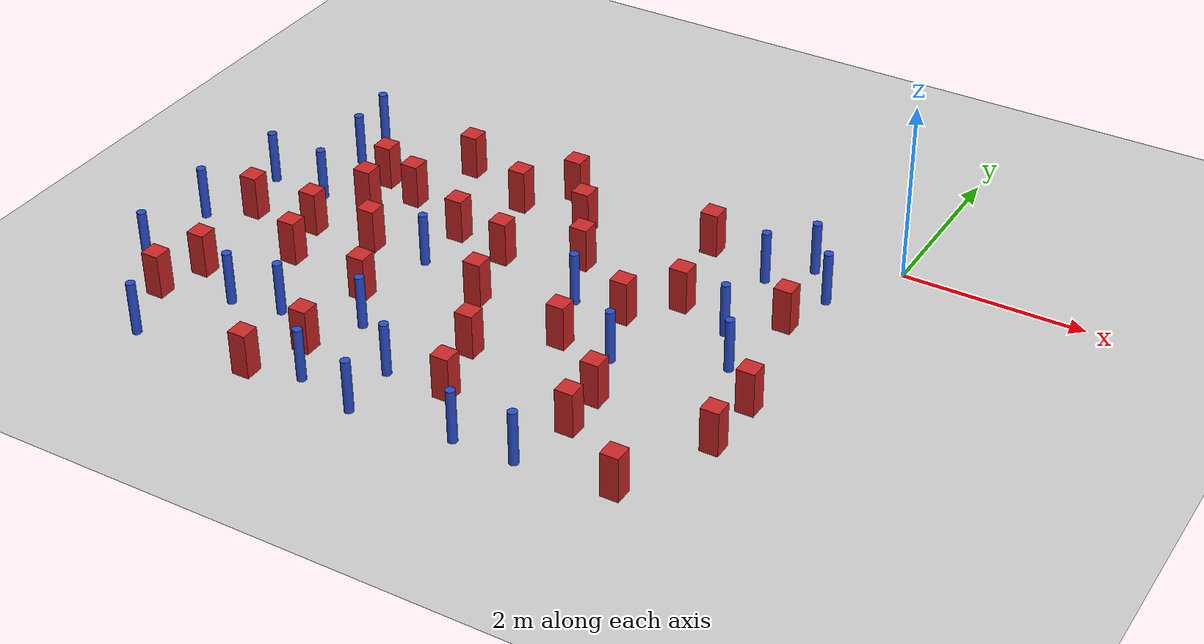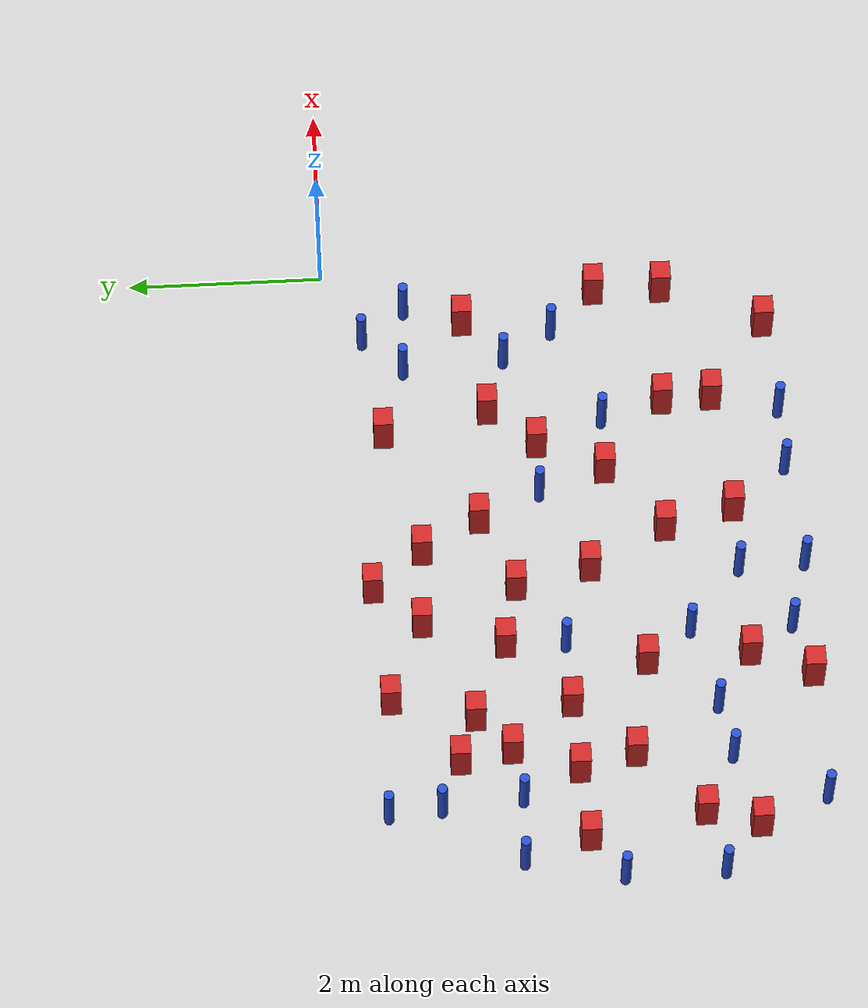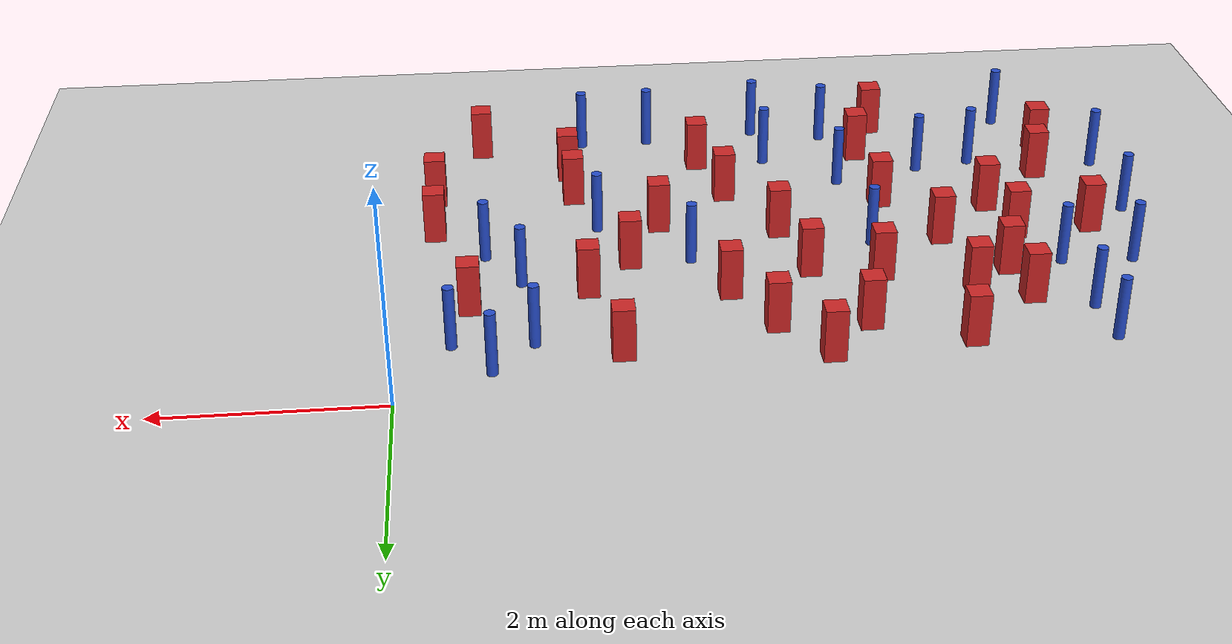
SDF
<sdf version="1.6">
 <world name="default">
  <model name="ground_plane">
   <static>1</static>
   <link name="link">
    <collision name="collision">
     <geometry><plane><normal>0 0 1</normal><size>100 100</size></plane></geometry>
     <surface><friction><ode><mu>100</mu><mu2>50</mu2></ode></friction></surface>
    </collision>
    <visual name="visual">
     <cast_shadows>0</cast_shadows>
     <geometry><plane><normal>0 0 1</normal><size>100 100</size></plane></geometry>
     <material>
      <ambient>1.0 1.0 1.0 1.0</ambient>
      <diffuse>0.8 0.8 0.8 1.0</diffuse>
      <specular>0.01 0.01 0.01 1.000000</specular>
     </material>
    </visual>
   </link>
  </model>
  <model name="pole_obstacle1">
   <static>true</static>
   <pose>-1.84881068578 -4.64026522399 7.38925637345e-09 -8.47170692799e-08 1.24976765033e-08 -1.74513093018e-07</pose>
   <link name="link">
    <pose>0 0 0.3 0 -0 0</pose>
    <inertial>
     <mass>1</mass>
     <inertia><ixx>0.145833</ixx><ixy>0</ixy><ixz>0</ixz><iyy>0.145833</iyy><iyz>0</iyz><izz>0.125</izz></inertia>
    </inertial>
    <collision name="collision">
     <geometry><cylinder><radius>0.05</radius><length>.6</length></cylinder></geometry>
    </collision>
    <visual name="visual">
     <geometry><cylinder><radius>0.05</radius><length>.6</length></cylinder></geometry>
     <material>
      <script><name>Gazebo/Blue</name><uri>file://media/materials/scripts/gazebo.material</uri></script>
     </material>
    </visual>
   </link>
  </model>
  <model name="square_post_obstacle5">
   <static>true</static>
   <pose>-4.66249946819 -3.09574171954 1.91545236811e-07 -7.35059704564e-06 1.12565212e-07 2.39332434364e-05</pose>
   <link name="link">
    <pose>0 0 0.25 0 -0 0</pose>
    <inertial>
     <mass>100</mass>
     <inertia>
      <ixx>0.166667</ixx>
      <ixy>0</ixy>
      <ixz>0</ixz>
      <iyy>0.166667</iyy>
      <iyz>0</iyz>
      <izz>0.166667</izz>
     </inertia>
    </inertial>
    <collision name="collision"><geometry><box><size>.2 .2 .5</size></box></geometry></collision>
    <visual name="visual">
     <geometry><box><size>.2 .2 .5</size></box></geometry>
     <material>
      <script><name>Gazebo/Red</name><uri>file://media/materials/scripts/gazebo.material</uri></script>
     </material>
    </visual>
   </link>
  </model>
  <model name="square_post_obstacle8">
   <static>true</static>
   <pose>-3.3170645429 -0.900582751196 1.91545236811e-07 -7.35059704564e-06 1.12565212e-07 2.39332434364e-05</pose>
   <link name="link">
    <pose>0 0 0.25 0 -0 0</pose>
    <inertial>
     <mass>100</mass>
     <inertia>
      <ixx>0.166667</ixx>
      <ixy>0</ixy>
      <ixz>0</ixz>
      <iyy>0.166667</iyy>
      <iyz>0</iyz>
      <izz>0.166667</izz>
     </inertia>
    </inertial>
    <collision name="collision"><geometry><box><size>.2 .2 .5</size></box></geometry></collision>
    <visual name="visual">
     <geometry><box><size>.2 .2 .5</size></box></geometry>
     <material>
      <script><name>Gazebo/Red</name><uri>file://media/materials/scripts/gazebo.material</uri></script>
     </material>
    </visual>
   </link>
  </model>
  <model name="square_post_obstacle18">
   <static>true</static>
   <pose>-2.13460060143 -2.13000570045 1.91545236811e-07 -7.35059704564e-06 1.12565212e-07 2.39332434364e-05</pose>
   <link name="link">
    <pose>0 0 0.25 0 -0 0</pose>
    <inertial>
     <mass>100</mass>
     <inertia>
      <ixx>0.166667</ixx>
      <ixy>0</ixy>
      <ixz>0</ixz>
      <iyy>0.166667</iyy>
      <iyz>0</iyz>
      <izz>0.166667</izz>
     </inertia>
    </inertial>
    <collision name="collision"><geometry><box><size>.2 .2 .5</size></box></geometry></collision>
    <visual name="visual">
     <geometry><box><size>.2 .2 .5</size></box></geometry>
     <material>
      <script><name>Gazebo/Red</name><uri>file://media/materials/scripts/gazebo.material</uri></script>
     </material>
    </visual>
   </link>
  </model>
  <model name="square_post_obstacle19">
   <static>true</static>
   <pose>-6.33920245669 -3.56347168327 1.91545236811e-07 -7.35059704564e-06 1.12565212e-07 2.39332434364e-05</pose>
   <link name="link">
    <pose>0 0 0.25 0 -0 0</pose>
    <inertial>
     <mass>100</mass>
     <inertia>
      <ixx>0.166667</ixx>
      <ixy>0</ixy>
      <ixz>0</ixz>
      <iyy>0.166667</iyy>
      <iyz>0</iyz>
      <izz>0.166667</izz>
     </inertia>
    </inertial>
    <collision name="collision"><geometry><box><size>.2 .2 .5</size></box></geometry></collision>
    <visual name="visual">
     <geometry><box><size>.2 .2 .5</size></box></geometry>
     <material>
      <script><name>Gazebo/Red</name><uri>file://media/materials/scripts/gazebo.material</uri></script>
     </material>
    </visual>
   </link>
  </model>
  <model name="pole_obstacle18">
   <static>true</static>
   <pose>-4.32782980573 -4.58440563796 7.38925637345e-09 -8.47170692796e-08 1.24976764786e-08 -1.74513093032e-07</pose>
   <link name="link">
    <pose>0 0 0.3 0 -0 0</pose>
    <inertial>
     <mass>1</mass>
     <inertia><ixx>0.145833</ixx><ixy>0</ixy><ixz>0</ixz><iyy>0.145833</iyy><iyz>0</iyz><izz>0.125</izz></inertia>
    </inertial>
    <collision name="collision">
     <geometry><cylinder><radius>0.05</radius><length>.6</length></cylinder></geometry>
    </collision>
    <visual name="visual">
     <geometry><cylinder><radius>0.05</radius><length>.6</length></cylinder></geometry>
     <material>
      <script><name>Gazebo/Blue</name><uri>file://media/materials/scripts/gazebo.material</uri></script>
     </material>
    </visual>
   </link>
  </model>
  <model name="square_post_obstacle31">
   <static>true</static>
   <pose>-1.9447592087 -0.572686958819 1.91545236811e-07 -7.35059704564e-06 1.12565212e-07 2.39332434364e-05</pose>
   <link name="link">
    <pose>0 0 0.25 0 -0 0</pose>
    <inertial>
     <mass>100</mass>
     <inertia>
      <ixx>0.166667</ixx>
      <ixy>0</ixy>
      <ixz>0</ixz>
      <iyy>0.166667</iyy>
      <iyz>0</iyz>
      <izz>0.166667</izz>
     </inertia>
    </inertial>
    <collision name="collision"><geometry><box><size>.2 .2 .5</size></box></geometry></collision>
    <visual name="visual">
     <geometry><box><size>.2 .2 .5</size></box></geometry>
     <material>
      <script><name>Gazebo/Red</name><uri>file://media/materials/scripts/gazebo.material</uri></script>
     </material>
    </visual>
   </link>
  </model>
  <model name="pole_obstacle23">
   <static>true</static>
   <pose>-6.12050103944 -1.77591589325 7.38925637345e-09 -8.471706928e-08 1.24976765134e-08 -1.74513093015e-07</pose>
   <link name="link">
    <pose>0 0 0.3 0 -0 0</pose>
    <inertial>
     <mass>1</mass>
     <inertia><ixx>0.145833</ixx><ixy>0</ixy><ixz>0</ixz><iyy>0.145833</iyy><iyz>0</iyz><izz>0.125</izz></inertia>
    </inertial>
    <collision name="collision">
     <geometry><cylinder><radius>0.05</radius><length>.6</length></cylinder></geometry>
    </collision>
    <visual name="visual">
     <geometry><cylinder><radius>0.05</radius><length>.6</length></cylinder></geometry>
     <material>
      <script><name>Gazebo/Blue</name><uri>file://media/materials/scripts/gazebo.material</uri></script>
     </material>
    </visual>
   </link>
  </model>
  <model name="pole_obstacle25">
   <static>true</static>
   <pose>-4.4315356092 -2.29630310365 7.38925637345e-09 -8.47170692798e-08 1.24976764937e-08 -1.74513093023e-07</pose>
   <link name="link">
    <pose>0 0 0.3 0 -0 0</pose>
    <inertial>
     <mass>1</mass>
     <inertia><ixx>0.145833</ixx><ixy>0</ixy><ixz>0</ixz><iyy>0.145833</iyy><iyz>0</iyz><izz>0.125</izz></inertia>
    </inertial>
    <collision name="collision">
     <geometry><cylinder><radius>0.05</radius><length>.6</length></cylinder></geometry>
    </collision>
    <visual name="visual">
     <geometry><cylinder><radius>0.05</radius><length>.6</length></cylinder></geometry>
     <material>
      <script><name>Gazebo/Blue</name><uri>file://media/materials/scripts/gazebo.material</uri></script>
     </material>
    </visual>
   </link>
  </model>
  <model name="pole_obstacle33">
   <static>true</static>
   <pose>-2.52013096964 -4.6529972856 7.38925637345e-09 -8.47170692798e-08 1.24976765033e-08 -1.74513093019e-07</pose>
   <link name="link">
    <pose>0 0 0.3 0 -0 0</pose>
    <inertial>
     <mass>1</mass>
     <inertia><ixx>0.145833</ixx><ixy>0</ixy><ixz>0</ixz><iyy>0.145833</iyy><iyz>0</iyz><izz>0.125</izz></inertia>
    </inertial>
    <collision name="collision">
     <geometry><cylinder><radius>0.05</radius><length>.6</length></cylinder></geometry>
    </collision>
    <visual name="visual">
     <geometry><cylinder><radius>0.05</radius><length>.6</length></cylinder></geometry>
     <material>
      <script><name>Gazebo/Blue</name><uri>file://media/materials/scripts/gazebo.material</uri></script>
     </material>
    </visual>
   </link>
  </model>
  <model name="square_post_obstacle39">
   <static>true</static>
   <pose>-5.67663258866 -1.17191423581 1.91545236811e-07 -7.35059704564e-06 1.12565212e-07 2.39332434364e-05</pose>
   <link name="link">
    <pose>0 0 0.25 0 -0 0</pose>
    <inertial>
     <mass>100</mass>
     <inertia>
      <ixx>0.166667</ixx>
      <ixy>0</ixy>
      <ixz>0</ixz>
      <iyy>0.166667</iyy>
      <iyz>0</iyz>
      <izz>0.166667</izz>
     </inertia>
    </inertial>
    <collision name="collision"><geometry><box><size>.2 .2 .5</size></box></geometry></collision>
    <visual name="visual">
     <geometry><box><size>.2 .2 .5</size></box></geometry>
     <material>
      <script><name>Gazebo/Red</name><uri>file://media/materials/scripts/gazebo.material</uri></script>
     </material>
    </visual>
   </link>
  </model>
  <model name="pole_obstacle43">
   <static>true</static>
   <pose>-1.12382679869 -1.84733695524 7.38925637345e-09 -8.471706928e-08 1.24976765079e-08 -1.74513093017e-07</pose>
   <link name="link">
    <pose>0 0 0.3 0 -0 0</pose>
    <inertial>
     <mass>1</mass>
     <inertia><ixx>0.145833</ixx><ixy>0</ixy><ixz>0</ixz><iyy>0.145833</iyy><iyz>0</iyz><izz>0.125</izz></inertia>
    </inertial>
    <collision name="collision">
     <geometry><cylinder><radius>0.05</radius><length>.6</length></cylinder></geometry>
    </collision>
    <visual name="visual">
     <geometry><cylinder><radius>0.05</radius><length>.6</length></cylinder></geometry>
     <material>
      <script><name>Gazebo/Blue</name><uri>file://media/materials/scripts/gazebo.material</uri></script>
     </material>
    </visual>
   </link>
  </model>
  <model name="pole_obstacle45">
   <static>true</static>
   <pose>-2.70119789987 -2.12984652717 7.38925637345e-09 -8.47170692798e-08 1.24976764939e-08 -1.74513093025e-07</pose>
   <link name="link">
    <pose>0 0 0.3 0 -0 0</pose>
    <inertial>
     <mass>1</mass>
     <inertia><ixx>0.145833</ixx><ixy>0</ixy><ixz>0</ixz><iyy>0.145833</iyy><iyz>0</iyz><izz>0.125</izz></inertia>
    </inertial>
    <collision name="collision">
     <geometry><cylinder><radius>0.05</radius><length>.6</length></cylinder></geometry>
    </collision>
    <visual name="visual">
     <geometry><cylinder><radius>0.05</radius><length>.6</length></cylinder></geometry>
     <material>
      <script><name>Gazebo/Blue</name><uri>file://media/materials/scripts/gazebo.material</uri></script>
     </material>
    </visual>
   </link>
  </model>
  <model name="square_post_obstacle51">
   <static>true</static>
   <pose>-0.344123641786 -2.82299321826 1.91545236811e-07 -7.35059704564e-06 1.12565212e-07 2.39332434364e-05</pose>
   <link name="link">
    <pose>0 0 0.25 0 -0 0</pose>
    <inertial>
     <mass>100</mass>
     <inertia>
      <ixx>0.166667</ixx>
      <ixy>0</ixy>
      <ixz>0</ixz>
      <iyy>0.166667</iyy>
      <iyz>0</iyz>
      <izz>0.166667</izz>
     </inertia>
    </inertial>
    <collision name="collision"><geometry><box><size>.2 .2 .5</size></box></geometry></collision>
    <visual name="visual">
     <geometry><box><size>.2 .2 .5</size></box></geometry>
     <material>
      <script><name>Gazebo/Red</name><uri>file://media/materials/scripts/gazebo.material</uri></script>
     </material>
    </visual>
   </link>
  </model>
  <model name="square_post_obstacle54">
   <static>true</static>
   <pose>-4.98160088946 -0.513162918754 1.91545236811e-07 -7.35059704564e-06 1.12565212e-07 2.39332434364e-05</pose>
   <link name="link">
    <pose>0 0 0.25 0 -0 0</pose>
    <inertial>
     <mass>100</mass>
     <inertia>
      <ixx>0.166667</ixx>
      <ixy>0</ixy>
      <ixz>0</ixz>
      <iyy>0.166667</iyy>
      <iyz>0</iyz>
      <izz>0.166667</izz>
     </inertia>
    </inertial>
    <collision name="collision"><geometry><box><size>.2 .2 .5</size></box></geometry></collision>
    <visual name="visual">
     <geometry><box><size>.2 .2 .5</size></box></geometry>
     <material>
      <script><name>Gazebo/Red</name><uri>file://media/materials/scripts/gazebo.material</uri></script>
     </material>
    </visual>
   </link>
  </model>
  <model name="square_post_obstacle56">
   <static>true</static>
   <pose>-5.82158959328 -2.34904391874 1.91545236811e-07 -7.35059704564e-06 1.12565212e-07 2.39332434364e-05</pose>
   <link name="link">
    <pose>0 0 0.25 0 -0 0</pose>
    <inertial>
     <mass>100</mass>
     <inertia>
      <ixx>0.166667</ixx>
      <ixy>0</ixy>
      <ixz>0</ixz>
      <iyy>0.166667</iyy>
      <iyz>0</iyz>
      <izz>0.166667</izz>
     </inertia>
    </inertial>
    <collision name="collision"><geometry><box><size>.2 .2 .5</size></box></geometry></collision>
    <visual name="visual">
     <geometry><box><size>.2 .2 .5</size></box></geometry>
     <material>
      <script><name>Gazebo/Red</name><uri>file://media/materials/scripts/gazebo.material</uri></script>
     </material>
    </visual>
   </link>
  </model>
  <model name="square_post_obstacle72">
   <static>true</static>
   <pose>-5.20244748279 -1.34698575695 1.91545236811e-07 -7.35059704564e-06 1.12565212e-07 2.39332434364e-05</pose>
   <link name="link">
    <pose>0 0 0.25 0 -0 0</pose>
    <inertial>
     <mass>100</mass>
     <inertia>
      <ixx>0.166667</ixx>
      <ixy>0</ixy>
      <ixz>0</ixz>
      <iyy>0.166667</iyy>
      <iyz>0</iyz>
      <izz>0.166667</izz>
     </inertia>
    </inertial>
    <collision name="collision"><geometry><box><size>.2 .2 .5</size></box></geometry></collision>
    <visual name="visual">
     <geometry><box><size>.2 .2 .5</size></box></geometry>
     <material>
      <script><name>Gazebo/Red</name><uri>file://media/materials/scripts/gazebo.material</uri></script>
     </material>
    </visual>
   </link>
  </model>
  <model name="pole_obstacle73">
   <static>true</static>
   <pose>-6.99591552288 -2.72365771583 7.38925637345e-09 -8.47170692798e-08 1.24976764937e-08 -1.74513093023e-07</pose>
   <link name="link">
    <pose>0 0 0.3 0 -0 0</pose>
    <inertial>
     <mass>1</mass>
     <inertia><ixx>0.145833</ixx><ixy>0</ixy><ixz>0</ixz><iyy>0.145833</iyy><iyz>0</iyz><izz>0.125</izz></inertia>
    </inertial>
    <collision name="collision">
     <geometry><cylinder><radius>0.05</radius><length>.6</length></cylinder></geometry>
    </collision>
    <visual name="visual">
     <geometry><cylinder><radius>0.05</radius><length>.6</length></cylinder></geometry>
     <material>
      <script><name>Gazebo/Blue</name><uri>file://media/materials/scripts/gazebo.material</uri></script>
     </material>
    </visual>
   </link>
  </model>
  <model name="square_post_obstacle78">
   <static>true</static>
   <pose>-1.66414000236 -3.95398625809 1.91545236811e-07 -7.35059704564e-06 1.12565212e-07 2.39332434364e-05</pose>
   <link name="link">
    <pose>0 0 0.25 0 -0 0</pose>
    <inertial>
     <mass>100</mass>
     <inertia>
      <ixx>0.166667</ixx>
      <ixy>0</ixy>
      <ixz>0</ixz>
      <iyy>0.166667</iyy>
      <iyz>0</iyz>
      <izz>0.166667</izz>
     </inertia>
    </inertial>
    <collision name="collision"><geometry><box><size>.2 .2 .5</size></box></geometry></collision>
    <visual name="visual">
     <geometry><box><size>.2 .2 .5</size></box></geometry>
     <material>
      <script><name>Gazebo/Red</name><uri>file://media/materials/scripts/gazebo.material</uri></script>
     </material>
    </visual>
   </link>
  </model>
  <model name="pole_obstacle80">
   <static>true</static>
   <pose>-6.23508785668 -0.439088424686 7.38925637345e-09 -8.47170692798e-08 1.24976765003e-08 -1.7451309302e-07</pose>
   <link name="link">
    <pose>0 0 0.3 0 -0 0</pose>
    <inertial>
     <mass>1</mass>
     <inertia><ixx>0.145833</ixx><ixy>0</ixy><ixz>0</ixz><iyy>0.145833</iyy><iyz>0</iyz><izz>0.125</izz></inertia>
    </inertial>
    <collision name="collision">
     <geometry><cylinder><radius>0.05</radius><length>.6</length></cylinder></geometry>
    </collision>
    <visual name="visual">
     <geometry><cylinder><radius>0.05</radius><length>.6</length></cylinder></geometry>
     <material>
      <script><name>Gazebo/Blue</name><uri>file://media/materials/scripts/gazebo.material</uri></script>
     </material>
    </visual>
   </link>
  </model>
  <model name="square_post_obstacle80">
   <static>true</static>
   <pose>-1.68837549073 -3.44707543412 1.91545236811e-07 -7.35059704564e-06 1.12565212e-07 2.39332434364e-05</pose>
   <link name="link">
    <pose>0 0 0.25 0 -0 0</pose>
    <inertial>
     <mass>100</mass>
     <inertia>
      <ixx>0.166667</ixx>
      <ixy>0</ixy>
      <ixz>0</ixz>
      <iyy>0.166667</iyy>
      <iyz>0</iyz>
      <izz>0.166667</izz>
     </inertia>
    </inertial>
    <collision name="collision"><geometry><box><size>.2 .2 .5</size></box></geometry></collision>
    <visual name="visual">
     <geometry><box><size>.2 .2 .5</size></box></geometry>
     <material>
      <script><name>Gazebo/Red</name><uri>file://media/materials/scripts/gazebo.material</uri></script>
     </material>
    </visual>
   </link>
  </model>
  <model name="pole_obstacle90">
   <static>true</static>
   <pose>-3.66260420712 -4.09473667292 7.38925637345e-09 -8.47170692794e-08 1.24976764468e-08 -1.7451309304e-07</pose>
   <link name="link">
    <pose>0 0 0.3 0 -0 0</pose>
    <inertial>
     <mass>1</mass>
     <inertia><ixx>0.145833</ixx><ixy>0</ixy><ixz>0</ixz><iyy>0.145833</iyy><iyz>0</iyz><izz>0.125</izz></inertia>
    </inertial>
    <collision name="collision">
     <geometry><cylinder><radius>0.05</radius><length>.6</length></cylinder></geometry>
    </collision>
    <visual name="visual">
     <geometry><cylinder><radius>0.05</radius><length>.6</length></cylinder></geometry>
     <material>
      <script><name>Gazebo/Blue</name><uri>file://media/materials/scripts/gazebo.material</uri></script>
     </material>
    </visual>
   </link>
  </model>
  <model name="square_post_obstacle83">
   <static>true</static>
   <pose>-1.71807746851 -1.64762767895 1.91545236811e-07 -7.35059704564e-06 1.12565212e-07 2.39332434364e-05</pose>
   <link name="link">
    <pose>0 0 0.25 0 -0 0</pose>
    <inertial>
     <mass>100</mass>
     <inertia>
      <ixx>0.166667</ixx>
      <ixy>0</ixy>
      <ixz>0</ixz>
      <iyy>0.166667</iyy>
      <iyz>0</iyz>
      <izz>0.166667</izz>
     </inertia>
    </inertial>
    <collision name="collision"><geometry><box><size>.2 .2 .5</size></box></geometry></collision>
    <visual name="visual">
     <geometry><box><size>.2 .2 .5</size></box></geometry>
     <material>
      <script><name>Gazebo/Red</name><uri>file://media/materials/scripts/gazebo.material</uri></script>
     </material>
    </visual>
   </link>
  </model>
  <model name="square_post_obstacle84">
   <static>true</static>
   <pose>-3.76424909903 -1.82880964202 1.91545236811e-07 -7.35059704564e-06 1.12565212e-07 2.39332434364e-05</pose>
   <link name="link">
    <pose>0 0 0.25 0 -0 0</pose>
    <inertial>
     <mass>100</mass>
     <inertia>
      <ixx>0.166667</ixx>
      <ixy>0</ixy>
      <ixz>0</ixz>
      <iyy>0.166667</iyy>
      <iyz>0</iyz>
      <izz>0.166667</izz>
     </inertia>
    </inertial>
    <collision name="collision"><geometry><box><size>.2 .2 .5</size></box></geometry></collision>
    <visual name="visual">
     <geometry><box><size>.2 .2 .5</size></box></geometry>
     <material>
      <script><name>Gazebo/Red</name><uri>file://media/materials/scripts/gazebo.material</uri></script>
     </material>
    </visual>
   </link>
  </model>
  <model name="pole_obstacle98">
   <static>true</static>
   <pose>-0.483628905147 -0.842553702162 7.38925637345e-09 -8.47170692798e-08 1.24976764924e-08 -1.74513093025e-07</pose>
   <link name="link">
    <pose>0 0 0.3 0 -0 0</pose>
    <inertial>
     <mass>1</mass>
     <inertia><ixx>0.145833</ixx><ixy>0</ixy><ixz>0</ixz><iyy>0.145833</iyy><iyz>0</iyz><izz>0.125</izz></inertia>
    </inertial>
    <collision name="collision">
     <geometry><cylinder><radius>0.05</radius><length>.6</length></cylinder></geometry>
    </collision>
    <visual name="visual">
     <geometry><cylinder><radius>0.05</radius><length>.6</length></cylinder></geometry>
     <material>
      <script><name>Gazebo/Blue</name><uri>file://media/materials/scripts/gazebo.material</uri></script>
     </material>
    </visual>
   </link>
  </model>
  <model name="square_post_obstacle88">
   <static>true</static>
   <pose>-2.4632374861 -2.80875596226 1.91545236811e-07 -7.35059704564e-06 1.12565212e-07 2.39332434364e-05</pose>
   <link name="link">
    <pose>0 0 0.25 0 -0 0</pose>
    <inertial>
     <mass>100</mass>
     <inertia>
      <ixx>0.166667</ixx>
      <ixy>0</ixy>
      <ixz>0</ixz>
      <iyy>0.166667</iyy>
      <iyz>0</iyz>
      <izz>0.166667</izz>
     </inertia>
    </inertial>
    <collision name="collision"><geometry><box><size>.2 .2 .5</size></box></geometry></collision>
    <visual name="visual">
     <geometry><box><size>.2 .2 .5</size></box></geometry>
     <material>
      <script><name>Gazebo/Red</name><uri>file://media/materials/scripts/gazebo.material</uri></script>
     </material>
    </visual>
   </link>
  </model>
  <model name="pole_obstacle109">
   <static>true</static>
   <pose>-1.88088596322 -2.81708456206 7.38925637345e-09 -8.47170692799e-08 1.24976765053e-08 -1.74513093017e-07</pose>
   <link name="link">
    <pose>0 0 0.3 0 -0 0</pose>
    <inertial>
     <mass>1</mass>
     <inertia><ixx>0.145833</ixx><ixy>0</ixy><ixz>0</ixz><iyy>0.145833</iyy><iyz>0</iyz><izz>0.125</izz></inertia>
    </inertial>
    <collision name="collision">
     <geometry><cylinder><radius>0.05</radius><length>.6</length></cylinder></geometry>
    </collision>
    <visual name="visual">
     <geometry><cylinder><radius>0.05</radius><length>.6</length></cylinder></geometry>
     <material>
      <script><name>Gazebo/Blue</name><uri>file://media/materials/scripts/gazebo.material</uri></script>
     </material>
    </visual>
   </link>
  </model>
  <model name="square_post_obstacle100">
   <static>true</static>
   <pose>-3.16208119073 -3.37779031237 1.91545236811e-07 -7.35059704564e-06 1.12565212e-07 2.39332434364e-05</pose>
   <link name="link">
    <pose>0 0 0.25 0 -0 0</pose>
    <inertial>
     <mass>100</mass>
     <inertia>
      <ixx>0.166667</ixx>
      <ixy>0</ixy>
      <ixz>0</ixz>
      <iyy>0.166667</iyy>
      <iyz>0</iyz>
      <izz>0.166667</izz>
     </inertia>
    </inertial>
    <collision name="collision"><geometry><box><size>.2 .2 .5</size></box></geometry></collision>
    <visual name="visual">
     <geometry><box><size>.2 .2 .5</size></box></geometry>
     <material>
      <script><name>Gazebo/Red</name><uri>file://media/materials/scripts/gazebo.material</uri></script>
     </material>
    </visual>
   </link>
  </model>
  <model name="pole_obstacle117">
   <static>true</static>
   <pose>-6.98178403921 -3.71574419724 7.38925637345e-09 -8.47170692798e-08 1.24976764937e-08 -1.74513093023e-07</pose>
   <link name="link">
    <pose>0 0 0.3 0 -0 0</pose>
    <inertial>
     <mass>1</mass>
     <inertia><ixx>0.145833</ixx><ixy>0</ixy><ixz>0</ixz><iyy>0.145833</iyy><iyz>0</iyz><izz>0.125</izz></inertia>
    </inertial>
    <collision name="collision">
     <geometry><cylinder><radius>0.05</radius><length>.6</length></cylinder></geometry>
    </collision>
    <visual name="visual">
     <geometry><cylinder><radius>0.05</radius><length>.6</length></cylinder></geometry>
     <material>
      <script><name>Gazebo/Blue</name><uri>file://media/materials/scripts/gazebo.material</uri></script>
     </material>
    </visual>
   </link>
  </model>
  <model name="pole_obstacle120">
   <static>true</static>
   <pose>-5.18564551384 -3.77398090686 7.38925637345e-09 -8.47170692798e-08 1.24976764937e-08 -1.74513093023e-07</pose>
   <link name="link">
    <pose>0 0 0.3 0 -0 0</pose>
    <inertial>
     <mass>1</mass>
     <inertia><ixx>0.145833</ixx><ixy>0</ixy><ixz>0</ixz><iyy>0.145833</iyy><iyz>0</iyz><izz>0.125</izz></inertia>
    </inertial>
    <collision name="collision">
     <geometry><cylinder><radius>0.05</radius><length>.6</length></cylinder></geometry>
    </collision>
    <visual name="visual">
     <geometry><cylinder><radius>0.05</radius><length>.6</length></cylinder></geometry>
     <material>
      <script><name>Gazebo/Blue</name><uri>file://media/materials/scripts/gazebo.material</uri></script>
     </material>
    </visual>
   </link>
  </model>
  <model name="pole_obstacle121">
   <static>true</static>
   <pose>-4.33293077332 -3.55771444007 7.38925637345e-09 -8.47170692798e-08 1.24976764937e-08 -1.74513093023e-07</pose>
   <link name="link">
    <pose>0 0 0.3 0 -0 0</pose>
    <inertial>
     <mass>1</mass>
     <inertia><ixx>0.145833</ixx><ixy>0</ixy><ixz>0</ixz><iyy>0.145833</iyy><iyz>0</iyz><izz>0.125</izz></inertia>
    </inertial>
    <collision name="collision">
     <geometry><cylinder><radius>0.05</radius><length>.6</length></cylinder></geometry>
    </collision>
    <visual name="visual">
     <geometry><cylinder><radius>0.05</radius><length>.6</length></cylinder></geometry>
     <material>
      <script><name>Gazebo/Blue</name><uri>file://media/materials/scripts/gazebo.material</uri></script>
     </material>
    </visual>
   </link>
  </model>
  <model name="square_post_obstacle119">
   <static>true</static>
   <pose>-4.13738865157 -0.86473550705 1.91545236811e-07 -7.35059704564e-06 1.12565212e-07 2.39332434364e-05</pose>
   <link name="link">
    <pose>0 0 0.25 0 -0 0</pose>
    <inertial>
     <mass>100</mass>
     <inertia>
      <ixx>0.166667</ixx>
      <ixy>0</ixy>
      <ixz>0</ixz>
      <iyy>0.166667</iyy>
      <iyz>0</iyz>
      <izz>0.166667</izz>
     </inertia>
    </inertial>
    <collision name="collision"><geometry><box><size>.2 .2 .5</size></box></geometry></collision>
    <visual name="visual">
     <geometry><box><size>.2 .2 .5</size></box></geometry>
     <material>
      <script><name>Gazebo/Red</name><uri>file://media/materials/scripts/gazebo.material</uri></script>
     </material>
    </visual>
   </link>
  </model>
  <model name="pole_obstacle139">
   <static>true</static>
   <pose>-5.74058200402 -3.87920063508 7.38925637345e-09 -8.47170692798e-08 1.24976764937e-08 -1.74513093023e-07</pose>
   <link name="link">
    <pose>0 0 0.3 0 -0 0</pose>
    <inertial>
     <mass>1</mass>
     <inertia><ixx>0.145833</ixx><ixy>0</ixy><ixz>0</ixz><iyy>0.145833</iyy><iyz>0</iyz><izz>0.125</izz></inertia>
    </inertial>
    <collision name="collision">
     <geometry><cylinder><radius>0.05</radius><length>.6</length></cylinder></geometry>
    </collision>
    <visual name="visual">
     <geometry><cylinder><radius>0.05</radius><length>.6</length></cylinder></geometry>
     <material>
      <script><name>Gazebo/Blue</name><uri>file://media/materials/scripts/gazebo.material</uri></script>
     </material>
    </visual>
   </link>
  </model>
  <model name="square_post_obstacle124">
   <static>true</static>
   <pose>-3.58557388449 -2.58921379791 1.91545236811e-07 -7.35059704564e-06 1.12565212e-07 2.39332434364e-05</pose>
   <link name="link">
    <pose>0 0 0.25 0 -0 0</pose>
    <inertial>
     <mass>100</mass>
     <inertia>
      <ixx>0.166667</ixx>
      <ixy>0</ixy>
      <ixz>0</ixz>
      <iyy>0.166667</iyy>
      <iyz>0</iyz>
      <izz>0.166667</izz>
     </inertia>
    </inertial>
    <collision name="collision"><geometry><box><size>.2 .2 .5</size></box></geometry></collision>
    <visual name="visual">
     <geometry><box><size>.2 .2 .5</size></box></geometry>
     <material>
      <script><name>Gazebo/Red</name><uri>file://media/materials/scripts/gazebo.material</uri></script>
     </material>
    </visual>
   </link>
  </model>
  <model name="pole_obstacle143">
   <static>true</static>
   <pose>-0.805327082872 -2.35896944065 7.38925637345e-09 -8.47170692799e-08 1.2497676509e-08 -1.74513093016e-07</pose>
   <link name="link">
    <pose>0 0 0.3 0 -0 0</pose>
    <inertial>
     <mass>1</mass>
     <inertia><ixx>0.145833</ixx><ixy>0</ixy><ixz>0</ixz><iyy>0.145833</iyy><iyz>0</iyz><izz>0.125</izz></inertia>
    </inertial>
    <collision name="collision">
     <geometry><cylinder><radius>0.05</radius><length>.6</length></cylinder></geometry>
    </collision>
    <visual name="visual">
     <geometry><cylinder><radius>0.05</radius><length>.6</length></cylinder></geometry>
     <material>
      <script><name>Gazebo/Blue</name><uri>file://media/materials/scripts/gazebo.material</uri></script>
     </material>
    </visual>
   </link>
  </model>
  <model name="pole_obstacle147">
   <static>true</static>
   <pose>-6.79047920975 -1.75066028283 7.38925637345e-09 -8.471706928e-08 1.24976765134e-08 -1.74513093015e-07</pose>
   <link name="link">
    <pose>0 0 0.3 0 -0 0</pose>
    <inertial>
     <mass>1</mass>
     <inertia><ixx>0.145833</ixx><ixy>0</ixy><ixz>0</ixz><iyy>0.145833</iyy><iyz>0</iyz><izz>0.125</izz></inertia>
    </inertial>
    <collision name="collision">
     <geometry><cylinder><radius>0.05</radius><length>.6</length></cylinder></geometry>
    </collision>
    <visual name="visual">
     <geometry><cylinder><radius>0.05</radius><length>.6</length></cylinder></geometry>
     <material>
      <script><name>Gazebo/Blue</name><uri>file://media/materials/scripts/gazebo.material</uri></script>
     </material>
    </visual>
   </link>
  </model>
  <model name="square_post_obstacle139">
   <static>true</static>
   <pose>-2.98288406057 -1.49864652268 1.91545236811e-07 -7.35059704564e-06 1.12565212e-07 2.39332434364e-05</pose>
   <link name="link">
    <pose>0 0 0.25 0 -0 0</pose>
    <inertial>
     <mass>100</mass>
     <inertia>
      <ixx>0.166667</ixx>
      <ixy>0</ixy>
      <ixz>0</ixz>
      <iyy>0.166667</iyy>
      <iyz>0</iyz>
      <izz>0.166667</izz>
     </inertia>
    </inertial>
    <collision name="collision"><geometry><box><size>.2 .2 .5</size></box></geometry></collision>
    <visual name="visual">
     <geometry><box><size>.2 .2 .5</size></box></geometry>
     <material>
      <script><name>Gazebo/Red</name><uri>file://media/materials/scripts/gazebo.material</uri></script>
     </material>
    </visual>
   </link>
  </model>
  <model name="square_post_obstacle144">
   <static>true</static>
   <pose>-4.87621117715 -4.74762175383 1.91545236811e-07 -7.35059704564e-06 1.12565212e-07 2.39332434364e-05</pose>
   <link name="link">
    <pose>0 0 0.25 0 -0 0</pose>
    <inertial>
     <mass>100</mass>
     <inertia>
      <ixx>0.166667</ixx>
      <ixy>0</ixy>
      <ixz>0</ixz>
      <iyy>0.166667</iyy>
      <iyz>0</iyz>
      <izz>0.166667</izz>
     </inertia>
    </inertial>
    <collision name="collision"><geometry><box><size>.2 .2 .5</size></box></geometry></collision>
    <visual name="visual">
     <geometry><box><size>.2 .2 .5</size></box></geometry>
     <material>
      <script><name>Gazebo/Red</name><uri>file://media/materials/scripts/gazebo.material</uri></script>
     </material>
    </visual>
   </link>
  </model>
  <model name="square_post_obstacle145">
   <static>true</static>
   <pose>-6.49416767419 -4.09704422942 1.91545236811e-07 -7.35059704564e-06 1.12565212e-07 2.39332434364e-05</pose>
   <link name="link">
    <pose>0 0 0.25 0 -0 0</pose>
    <inertial>
     <mass>100</mass>
     <inertia>
      <ixx>0.166667</ixx>
      <ixy>0</ixy>
      <ixz>0</ixz>
      <iyy>0.166667</iyy>
      <iyz>0</iyz>
      <izz>0.166667</izz>
     </inertia>
    </inertial>
    <collision name="collision"><geometry><box><size>.2 .2 .5</size></box></geometry></collision>
    <visual name="visual">
     <geometry><box><size>.2 .2 .5</size></box></geometry>
     <material>
      <script><name>Gazebo/Red</name><uri>file://media/materials/scripts/gazebo.material</uri></script>
     </material>
    </visual>
   </link>
  </model>
  <model name="square_post_obstacle155">
   <static>true</static>
   <pose>-4.40414399972 -1.68819194287 1.91545236811e-07 -7.35059704564e-06 1.12565212e-07 2.39332434364e-05</pose>
   <link name="link">
    <pose>0 0 0.25 0 -0 0</pose>
    <inertial>
     <mass>100</mass>
     <inertia>
      <ixx>0.166667</ixx>
      <ixy>0</ixy>
      <ixz>0</ixz>
      <iyy>0.166667</iyy>
      <iyz>0</iyz>
      <izz>0.166667</izz>
     </inertia>
    </inertial>
    <collision name="collision"><geometry><box><size>.2 .2 .5</size></box></geometry></collision>
    <visual name="visual">
     <geometry><box><size>.2 .2 .5</size></box></geometry>
     <material>
      <script><name>Gazebo/Red</name><uri>file://media/materials/scripts/gazebo.material</uri></script>
     </material>
    </visual>
   </link>
  </model>
  <model name="square_post_obstacle158">
   <static>true</static>
   <pose>-0.819959831515 -4.55425132598 1.91545236811e-07 -7.35059704564e-06 1.12565212e-07 2.39332434364e-05</pose>
   <link name="link">
    <pose>0 0 0.25 0 -0 0</pose>
    <inertial>
     <mass>100</mass>
     <inertia>
      <ixx>0.166667</ixx>
      <ixy>0</ixy>
      <ixz>0</ixz>
      <iyy>0.166667</iyy>
      <iyz>0</iyz>
      <izz>0.166667</izz>
     </inertia>
    </inertial>
    <collision name="collision"><geometry><box><size>.2 .2 .5</size></box></geometry></collision>
    <visual name="visual">
     <geometry><box><size>.2 .2 .5</size></box></geometry>
     <material>
      <script><name>Gazebo/Red</name><uri>file://media/materials/scripts/gazebo.material</uri></script>
     </material>
    </visual>
   </link>
  </model>
  <model name="pole_obstacle173">
   <static>true</static>
   <pose>-6.22909856328 -4.77900588297 7.38925637345e-09 -8.47170692796e-08 1.24976764786e-08 -1.74513093032e-07</pose>
   <link name="link">
    <pose>0 0 0.3 0 -0 0</pose>
    <inertial>
     <mass>1</mass>
     <inertia><ixx>0.145833</ixx><ixy>0</ixy><ixz>0</ixz><iyy>0.145833</iyy><iyz>0</iyz><izz>0.125</izz></inertia>
    </inertial>
    <collision name="collision">
     <geometry><cylinder><radius>0.05</radius><length>.6</length></cylinder></geometry>
    </collision>
    <visual name="visual">
     <geometry><cylinder><radius>0.05</radius><length>.6</length></cylinder></geometry>
     <material>
      <script><name>Gazebo/Blue</name><uri>file://media/materials/scripts/gazebo.material</uri></script>
     </material>
    </visual>
   </link>
  </model>
  <model name="pole_obstacle180">
   <static>true</static>
   <pose>-1.2014717832 -0.808969425866 7.38925637345e-09 -8.47170692799e-08 1.24976765075e-08 -1.74513093017e-07</pose>
   <link name="link">
    <pose>0 0 0.3 0 -0 0</pose>
    <inertial>
     <mass>1</mass>
     <inertia><ixx>0.145833</ixx><ixy>0</ixy><ixz>0</ixz><iyy>0.145833</iyy><iyz>0</iyz><izz>0.125</izz></inertia>
    </inertial>
    <collision name="collision">
     <geometry><cylinder><radius>0.05</radius><length>.6</length></cylinder></geometry>
    </collision>
    <visual name="visual">
     <geometry><cylinder><radius>0.05</radius><length>.6</length></cylinder></geometry>
     <material>
      <script><name>Gazebo/Blue</name><uri>file://media/materials/scripts/gazebo.material</uri></script>
     </material>
    </visual>
   </link>
  </model>
  <model name="pole_obstacle187">
   <static>true</static>
   <pose>-6.19100001543 -0.966117283283 7.38925637345e-09 -8.47170692799e-08 1.24976765054e-08 -1.74513093018e-07</pose>
   <link name="link">
    <pose>0 0 0.3 0 -0 0</pose>
    <inertial>
     <mass>1</mass>
     <inertia><ixx>0.145833</ixx><ixy>0</ixy><ixz>0</ixz><iyy>0.145833</iyy><iyz>0</iyz><izz>0.125</izz></inertia>
    </inertial>
    <collision name="collision">
     <geometry><cylinder><radius>0.05</radius><length>.6</length></cylinder></geometry>
    </collision>
    <visual name="visual">
     <geometry><cylinder><radius>0.05</radius><length>.6</length></cylinder></geometry>
     <material>
      <script><name>Gazebo/Blue</name><uri>file://media/materials/scripts/gazebo.material</uri></script>
     </material>
    </visual>
   </link>
  </model>
  <model name="square_post_obstacle181">
   <static>true</static>
   <pose>-4.61267805857 -4.13514559056 1.91545236811e-07 -7.35059704564e-06 1.12565212e-07 2.39332434364e-05</pose>
   <link name="link">
    <pose>0 0 0.25 0 -0 0</pose>
    <inertial>
     <mass>100</mass>
     <inertia>
      <ixx>0.166667</ixx>
      <ixy>0</ixy>
      <ixz>0</ixz>
      <iyy>0.166667</iyy>
      <iyz>0</iyz>
      <izz>0.166667</izz>
     </inertia>
    </inertial>
    <collision name="collision"><geometry><box><size>.2 .2 .5</size></box></geometry></collision>
    <visual name="visual">
     <geometry><box><size>.2 .2 .5</size></box></geometry>
     <material>
      <script><name>Gazebo/Red</name><uri>file://media/materials/scripts/gazebo.material</uri></script>
     </material>
    </visual>
   </link>
  </model>
  <model name="square_post_obstacle182">
   <static>true</static>
   <pose>-2.9714407289 -4.08464233599 1.91545236811e-07 -7.35059704564e-06 1.12565212e-07 2.39332434364e-05</pose>
   <link name="link">
    <pose>0 0 0.25 0 -0 0</pose>
    <inertial>
     <mass>100</mass>
     <inertia>
      <ixx>0.166667</ixx>
      <ixy>0</ixy>
      <ixz>0</ixz>
      <iyy>0.166667</iyy>
      <iyz>0</iyz>
      <izz>0.166667</izz>
     </inertia>
    </inertial>
    <collision name="collision"><geometry><box><size>.2 .2 .5</size></box></geometry></collision>
    <visual name="visual">
     <geometry><box><size>.2 .2 .5</size></box></geometry>
     <material>
      <script><name>Gazebo/Red</name><uri>file://media/materials/scripts/gazebo.material</uri></script>
     </material>
    </visual>
   </link>
  </model>
  <model name="square_post_obstacle183">
   <static>true</static>
   <pose>-5.67334702253 -2.91709620232 1.91545236811e-07 -7.35059704564e-06 1.12565212e-07 2.39332434364e-05</pose>
   <link name="link">
    <pose>0 0 0.25 0 -0 0</pose>
    <inertial>
     <mass>100</mass>
     <inertia>
      <ixx>0.166667</ixx>
      <ixy>0</ixy>
      <ixz>0</ixz>
      <iyy>0.166667</iyy>
      <iyz>0</iyz>
      <izz>0.166667</izz>
     </inertia>
    </inertial>
    <collision name="collision"><geometry><box><size>.2 .2 .5</size></box></geometry></collision>
    <visual name="visual">
     <geometry><box><size>.2 .2 .5</size></box></geometry>
     <material>
      <script><name>Gazebo/Red</name><uri>file://media/materials/scripts/gazebo.material</uri></script>
     </material>
    </visual>
   </link>
  </model>
  <model name="pole_obstacle194">
   <static>true</static>
   <pose>-3.63130869369 -4.76568528936 7.38925637345e-09 -8.47170692798e-08 1.24976765033e-08 -1.74513093019e-07</pose>
   <link name="link">
    <pose>0 0 0.3 0 -0 0</pose>
    <inertial>
     <mass>1</mass>
     <inertia><ixx>0.145833</ixx><ixy>0</ixy><ixz>0</ixz><iyy>0.145833</iyy><iyz>0</iyz><izz>0.125</izz></inertia>
    </inertial>
    <collision name="collision">
     <geometry><cylinder><radius>0.05</radius><length>.6</length></cylinder></geometry>
    </collision>
    <visual name="visual">
     <geometry><cylinder><radius>0.05</radius><length>.6</length></cylinder></geometry>
     <material>
      <script><name>Gazebo/Blue</name><uri>file://media/materials/scripts/gazebo.material</uri></script>
     </material>
    </visual>
   </link>
  </model>
  <model name="square_post_obstacle190">
   <static>true</static>
   <pose>-6.55964898961 -2.40724311806 1.91545236811e-07 -7.35059704564e-06 1.12565212e-07 2.39332434364e-05</pose>
   <link name="link">
    <pose>0 0 0.25 0 -0 0</pose>
    <inertial>
     <mass>100</mass>
     <inertia>
      <ixx>0.166667</ixx>
      <ixy>0</ixy>
      <ixz>0</ixz>
      <iyy>0.166667</iyy>
      <iyz>0</iyz>
      <izz>0.166667</izz>
     </inertia>
    </inertial>
    <collision name="collision"><geometry><box><size>.2 .2 .5</size></box></geometry></collision>
    <visual name="visual">
     <geometry><box><size>.2 .2 .5</size></box></geometry>
     <material>
      <script><name>Gazebo/Red</name><uri>file://media/materials/scripts/gazebo.material</uri></script>
     </material>
    </visual>
   </link>
  </model>
  <model name="square_post_obstacle193">
   <static>true</static>
   <pose>-0.353277148278 -3.52307140854 1.91545236811e-07 -7.35059704564e-06 1.12565212e-07 2.39332434364e-05</pose>
   <link name="link">
    <pose>0 0 0.25 0 -0 0</pose>
    <inertial>
     <mass>100</mass>
     <inertia>
      <ixx>0.166667</ixx>
      <ixy>0</ixy>
      <ixz>0</ixz>
      <iyy>0.166667</iyy>
      <iyz>0</iyz>
      <izz>0.166667</izz>
     </inertia>
    </inertial>
    <collision name="collision"><geometry><box><size>.2 .2 .5</size></box></geometry></collision>
    <visual name="visual">
     <geometry><box><size>.2 .2 .5</size></box></geometry>
     <material>
      <script><name>Gazebo/Red</name><uri>file://media/materials/scripts/gazebo.material</uri></script>
     </material>
    </visual>
   </link>
  </model>
  <model name="square_post_obstacle196">
   <static>true</static>
   <pose>-0.65007158017 -1.44129525547 1.91545236811e-07 -7.35059704564e-06 1.12565212e-07 2.39332434364e-05</pose>
   <link name="link">
    <pose>0 0 0.25 0 -0 0</pose>
    <inertial>
     <mass>100</mass>
     <inertia>
      <ixx>0.166667</ixx>
      <ixy>0</ixy>
      <ixz>0</ixz>
      <iyy>0.166667</iyy>
      <iyz>0</iyz>
      <izz>0.166667</izz>
     </inertia>
    </inertial>
    <collision name="collision"><geometry><box><size>.2 .2 .5</size></box></geometry></collision>
    <visual name="visual">
     <geometry><box><size>.2 .2 .5</size></box></geometry>
     <material>
      <script><name>Gazebo/Red</name><uri>file://media/materials/scripts/gazebo.material</uri></script>
     </material>
    </visual>
   </link>
  </model>
  <model name="square_post_obstacle197">
   <static>true</static>
   <pose>-5.58208056511 -1.69205710225 1.91545236811e-07 -7.35059704564e-06 1.12565212e-07 2.39332434364e-05</pose>
   <link name="link">
    <pose>0 0 0.25 0 -0 0</pose>
    <inertial>
     <mass>100</mass>
     <inertia>
      <ixx>0.166667</ixx>
      <ixy>0</ixy>
      <ixz>0</ixz>
      <iyy>0.166667</iyy>
      <iyz>0</iyz>
      <izz>0.166667</izz>
     </inertia>
    </inertial>
    <collision name="collision"><geometry><box><size>.2 .2 .5</size></box></geometry></collision>
    <visual name="visual">
     <geometry><box><size>.2 .2 .5</size></box></geometry>
     <material>
      <script><name>Gazebo/Red</name><uri>file://media/materials/scripts/gazebo.material</uri></script>
     </material>
    </visual>
   </link>
  </model>
  <model name="pole_obstacle208">
   <static>true</static>
   <pose>-0.825664580514 -0.398521873543 7.38925637345e-09 -8.471706928e-08 1.24976765108e-08 -1.74513093015e-07</pose>
   <link name="link">
    <pose>0 0 0.3 0 -0 0</pose>
    <inertial>
     <mass>1</mass>
     <inertia><ixx>0.145833</ixx><ixy>0</ixy><ixz>0</ixz><iyy>0.145833</iyy><iyz>0</iyz><izz>0.125</izz></inertia>
    </inertial>
    <collision name="collision">
     <geometry><cylinder><radius>0.05</radius><length>.6</length></cylinder></geometry>
    </collision>
    <visual name="visual">
     <geometry><cylinder><radius>0.05</radius><length>.6</length></cylinder></geometry>
     <material>
      <script><name>Gazebo/Blue</name><uri>file://media/materials/scripts/gazebo.material</uri></script>
     </material>
    </visual>
   </link>
  </model>
  <model name="square_post_obstacle204">
   <static>true</static>
   <pose>-3.7224705057 -0.386916321849 1.91545236811e-07 -7.35059704564e-06 1.12565212e-07 2.39332434364e-05</pose>
   <link name="link">
    <pose>0 0 0.25 0 -0 0</pose>
    <inertial>
     <mass>100</mass>
     <inertia>
      <ixx>0.166667</ixx>
      <ixy>0</ixy>
      <ixz>0</ixz>
      <iyy>0.166667</iyy>
      <iyz>0</iyz>
      <izz>0.166667</izz>
     </inertia>
    </inertial>
    <collision name="collision"><geometry><box><size>.2 .2 .5</size></box></geometry></collision>
    <visual name="visual">
     <geometry><box><size>.2 .2 .5</size></box></geometry>
     <material>
      <script><name>Gazebo/Red</name><uri>file://media/materials/scripts/gazebo.material</uri></script>
     </material>
    </visual>
   </link>
  </model>
  <model name="square_post_obstacle205">
   <static>true</static>
   <pose>-5.09378250702 -2.31473951906 1.91545236811e-07 -7.35059704564e-06 1.12565212e-07 2.39332434364e-05</pose>
   <link name="link">
    <pose>0 0 0.25 0 -0 0</pose>
    <inertial>
     <mass>100</mass>
     <inertia>
      <ixx>0.166667</ixx>
      <ixy>0</ixy>
      <ixz>0</ixz>
      <iyy>0.166667</iyy>
      <iyz>0</iyz>
      <izz>0.166667</izz>
     </inertia>
    </inertial>
    <collision name="collision"><geometry><box><size>.2 .2 .5</size></box></geometry></collision>
    <visual name="visual">
     <geometry><box><size>.2 .2 .5</size></box></geometry>
     <material>
      <script><name>Gazebo/Red</name><uri>file://media/materials/scripts/gazebo.material</uri></script>
     </material>
    </visual>
   </link>
  </model>
 </world>
</sdf>
